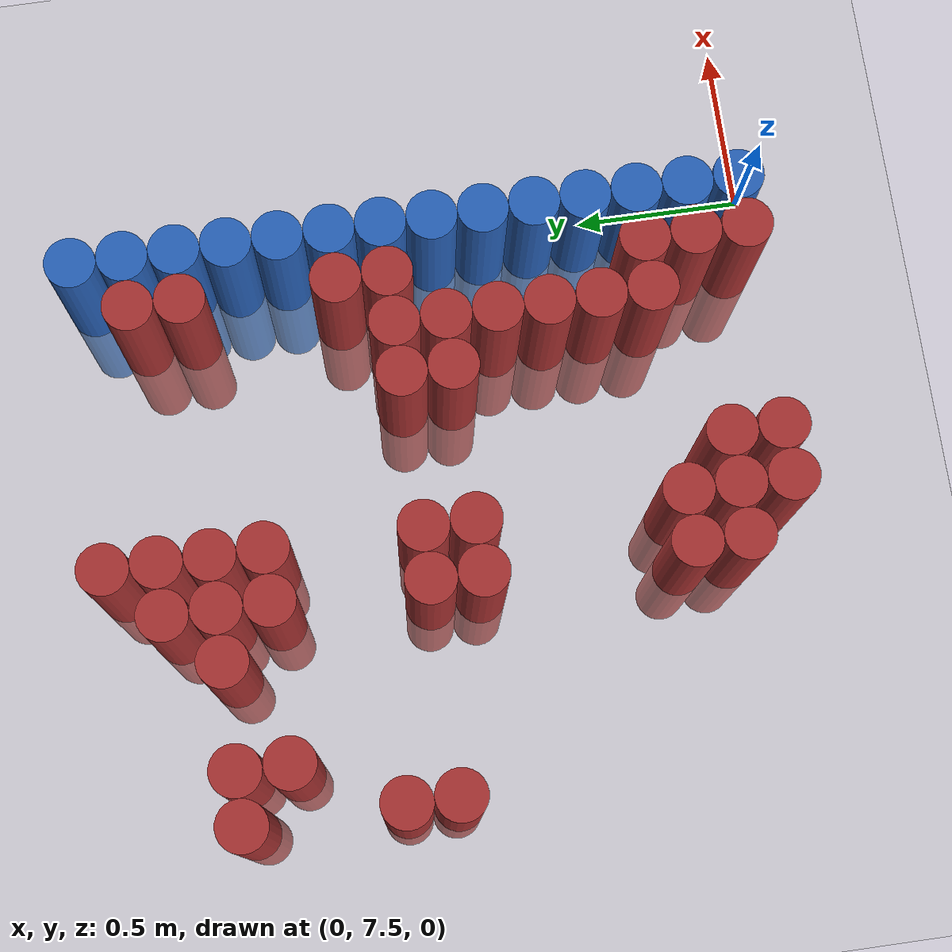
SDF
<sdf version="1.6">
 <world name="default">
  <model name="ground_plane">
   <static>1</static>
   <link name="link">
    <collision name="collision">
     <geometry><plane><normal>0 0 1</normal><size>100 100</size></plane></geometry>
     <surface><friction><ode><mu>100</mu><mu2>50</mu2></ode></friction></surface>
    </collision>
    <visual name="visual">
     <cast_shadows>0</cast_shadows>
     <geometry><plane><normal>0 0 1</normal><size>100 100</size></plane></geometry>
     <material>
      <script><uri>file://media/materials/scripts/gazebo.material</uri><name>Gazebo/Grey</name></script>
     </material>
    </visual>
   </link>
  </model>
  <model name="unit_cylinder_154">
   <static>1</static>
   <pose>-1.725000 8.625000 0.000000 0.000000 0.000000 0.000000</pose>
   <link name="link">
    <inertial>
     <mass>1</mass>
     <inertia><ixx>0.145833</ixx><ixy>0</ixy><ixz>0</ixz><iyy>0.145833</iyy><iyz>0</iyz><izz>0.125</izz></inertia>
    </inertial>
    <collision name="collision">
     <geometry><cylinder><radius>0.075000</radius><length>1</length></cylinder></geometry>
    </collision>
    <visual name="visual">
     <geometry><cylinder><radius>0.075000</radius><length>1</length></cylinder></geometry>
     <material>
      <ambient>0.648000 0.192000 0.192000 1</ambient>
      <diffuse>0.648000 0.192000 0.192000 1</diffuse>
     </material>
     <material>
      <script><name>Gazebo/Grey</name><uri>file://media/materials/scripts/gazebo.material</uri></script>
     </material>
    </visual>
   </link>
  </model>
  <model name="unit_cylinder_155">
   <static>1</static>
   <pose>-1.725000 8.775000 0.000000 0.000000 0.000000 0.000000</pose>
   <link name="link">
    <inertial>
     <mass>1</mass>
     <inertia><ixx>0.145833</ixx><ixy>0</ixy><ixz>0</ixz><iyy>0.145833</iyy><iyz>0</iyz><izz>0.125</izz></inertia>
    </inertial>
    <collision name="collision">
     <geometry><cylinder><radius>0.075000</radius><length>1</length></cylinder></geometry>
    </collision>
    <visual name="visual">
     <geometry><cylinder><radius>0.075000</radius><length>1</length></cylinder></geometry>
     <material>
      <ambient>0.648000 0.192000 0.192000 1</ambient>
      <diffuse>0.648000 0.192000 0.192000 1</diffuse>
     </material>
     <material>
      <script><name>Gazebo/Grey</name><uri>file://media/materials/scripts/gazebo.material</uri></script>
     </material>
    </visual>
   </link>
  </model>
  <model name="unit_cylinder_156">
   <static>1</static>
   <pose>-1.725000 9.225000 0.000000 0.000000 0.000000 0.000000</pose>
   <link name="link">
    <inertial>
     <mass>1</mass>
     <inertia><ixx>0.145833</ixx><ixy>0</ixy><ixz>0</ixz><iyy>0.145833</iyy><iyz>0</iyz><izz>0.125</izz></inertia>
    </inertial>
    <collision name="collision">
     <geometry><cylinder><radius>0.075000</radius><length>1</length></cylinder></geometry>
    </collision>
    <visual name="visual">
     <geometry><cylinder><radius>0.075000</radius><length>1</length></cylinder></geometry>
     <material>
      <ambient>0.648000 0.192000 0.192000 1</ambient>
      <diffuse>0.648000 0.192000 0.192000 1</diffuse>
     </material>
     <material>
      <script><name>Gazebo/Grey</name><uri>file://media/materials/scripts/gazebo.material</uri></script>
     </material>
    </visual>
   </link>
  </model>
  <model name="unit_cylinder_159">
   <static>1</static>
   <pose>-1.575000 9.075000 0.000000 0.000000 0.000000 0.000000</pose>
   <link name="link">
    <inertial>
     <mass>1</mass>
     <inertia><ixx>0.145833</ixx><ixy>0</ixy><ixz>0</ixz><iyy>0.145833</iyy><iyz>0</iyz><izz>0.125</izz></inertia>
    </inertial>
    <collision name="collision">
     <geometry><cylinder><radius>0.075000</radius><length>1</length></cylinder></geometry>
    </collision>
    <visual name="visual">
     <geometry><cylinder><radius>0.075000</radius><length>1</length></cylinder></geometry>
     <material>
      <ambient>0.648000 0.192000 0.192000 1</ambient>
      <diffuse>0.648000 0.192000 0.192000 1</diffuse>
     </material>
     <material>
      <script><name>Gazebo/Grey</name><uri>file://media/materials/scripts/gazebo.material</uri></script>
     </material>
    </visual>
   </link>
  </model>
  <model name="unit_cylinder_160">
   <static>1</static>
   <pose>-1.575000 9.225000 0.000000 0.000000 0.000000 0.000000</pose>
   <link name="link">
    <inertial>
     <mass>1</mass>
     <inertia><ixx>0.145833</ixx><ixy>0</ixy><ixz>0</ixz><iyy>0.145833</iyy><iyz>0</iyz><izz>0.125</izz></inertia>
    </inertial>
    <collision name="collision">
     <geometry><cylinder><radius>0.075000</radius><length>1</length></cylinder></geometry>
    </collision>
    <visual name="visual">
     <geometry><cylinder><radius>0.075000</radius><length>1</length></cylinder></geometry>
     <material>
      <ambient>0.648000 0.192000 0.192000 1</ambient>
      <diffuse>0.648000 0.192000 0.192000 1</diffuse>
     </material>
     <material>
      <script><name>Gazebo/Grey</name><uri>file://media/materials/scripts/gazebo.material</uri></script>
     </material>
    </visual>
   </link>
  </model>
  <model name="unit_cylinder_167">
   <static>1</static>
   <pose>-1.275000 9.225000 0.000000 0.000000 0.000000 0.000000</pose>
   <link name="link">
    <inertial>
     <mass>1</mass>
     <inertia><ixx>0.145833</ixx><ixy>0</ixy><ixz>0</ixz><iyy>0.145833</iyy><iyz>0</iyz><izz>0.125</izz></inertia>
    </inertial>
    <collision name="collision">
     <geometry><cylinder><radius>0.075000</radius><length>1</length></cylinder></geometry>
    </collision>
    <visual name="visual">
     <geometry><cylinder><radius>0.075000</radius><length>1</length></cylinder></geometry>
     <material>
      <ambient>0.648000 0.192000 0.192000 1</ambient>
      <diffuse>0.648000 0.192000 0.192000 1</diffuse>
     </material>
     <material>
      <script><name>Gazebo/Grey</name><uri>file://media/materials/scripts/gazebo.material</uri></script>
     </material>
    </visual>
   </link>
  </model>
  <model name="unit_cylinder_172">
   <static>1</static>
   <pose>-1.125000 7.725000 0.000000 0.000000 0.000000 0.000000</pose>
   <link name="link">
    <inertial>
     <mass>1</mass>
     <inertia><ixx>0.145833</ixx><ixy>0</ixy><ixz>0</ixz><iyy>0.145833</iyy><iyz>0</iyz><izz>0.125</izz></inertia>
    </inertial>
    <collision name="collision">
     <geometry><cylinder><radius>0.075000</radius><length>1</length></cylinder></geometry>
    </collision>
    <visual name="visual">
     <geometry><cylinder><radius>0.075000</radius><length>1</length></cylinder></geometry>
     <material>
      <ambient>0.648000 0.192000 0.192000 1</ambient>
      <diffuse>0.648000 0.192000 0.192000 1</diffuse>
     </material>
     <material>
      <script><name>Gazebo/Grey</name><uri>file://media/materials/scripts/gazebo.material</uri></script>
     </material>
    </visual>
   </link>
  </model>
  <model name="unit_cylinder_173">
   <static>1</static>
   <pose>-1.125000 7.875000 0.000000 0.000000 0.000000 0.000000</pose>
   <link name="link">
    <inertial>
     <mass>1</mass>
     <inertia><ixx>0.145833</ixx><ixy>0</ixy><ixz>0</ixz><iyy>0.145833</iyy><iyz>0</iyz><izz>0.125</izz></inertia>
    </inertial>
    <collision name="collision">
     <geometry><cylinder><radius>0.075000</radius><length>1</length></cylinder></geometry>
    </collision>
    <visual name="visual">
     <geometry><cylinder><radius>0.075000</radius><length>1</length></cylinder></geometry>
     <material>
      <ambient>0.648000 0.192000 0.192000 1</ambient>
      <diffuse>0.648000 0.192000 0.192000 1</diffuse>
     </material>
     <material>
      <script><name>Gazebo/Grey</name><uri>file://media/materials/scripts/gazebo.material</uri></script>
     </material>
    </visual>
   </link>
  </model>
  <model name="unit_cylinder_174">
   <static>1</static>
   <pose>-1.125000 8.475000 0.000000 0.000000 0.000000 0.000000</pose>
   <link name="link">
    <inertial>
     <mass>1</mass>
     <inertia><ixx>0.145833</ixx><ixy>0</ixy><ixz>0</ixz><iyy>0.145833</iyy><iyz>0</iyz><izz>0.125</izz></inertia>
    </inertial>
    <collision name="collision">
     <geometry><cylinder><radius>0.075000</radius><length>1</length></cylinder></geometry>
    </collision>
    <visual name="visual">
     <geometry><cylinder><radius>0.075000</radius><length>1</length></cylinder></geometry>
     <material>
      <ambient>0.648000 0.192000 0.192000 1</ambient>
      <diffuse>0.648000 0.192000 0.192000 1</diffuse>
     </material>
     <material>
      <script><name>Gazebo/Grey</name><uri>file://media/materials/scripts/gazebo.material</uri></script>
     </material>
    </visual>
   </link>
  </model>
  <model name="unit_cylinder_175">
   <static>1</static>
   <pose>-1.125000 8.625000 0.000000 0.000000 0.000000 0.000000</pose>
   <link name="link">
    <inertial>
     <mass>1</mass>
     <inertia><ixx>0.145833</ixx><ixy>0</ixy><ixz>0</ixz><iyy>0.145833</iyy><iyz>0</iyz><izz>0.125</izz></inertia>
    </inertial>
    <collision name="collision">
     <geometry><cylinder><radius>0.075000</radius><length>1</length></cylinder></geometry>
    </collision>
    <visual name="visual">
     <geometry><cylinder><radius>0.075000</radius><length>1</length></cylinder></geometry>
     <material>
      <ambient>0.648000 0.192000 0.192000 1</ambient>
      <diffuse>0.648000 0.192000 0.192000 1</diffuse>
     </material>
     <material>
      <script><name>Gazebo/Grey</name><uri>file://media/materials/scripts/gazebo.material</uri></script>
     </material>
    </visual>
   </link>
  </model>
  <model name="unit_cylinder_176">
   <static>1</static>
   <pose>-1.125000 9.075000 0.000000 0.000000 0.000000 0.000000</pose>
   <link name="link">
    <inertial>
     <mass>1</mass>
     <inertia><ixx>0.145833</ixx><ixy>0</ixy><ixz>0</ixz><iyy>0.145833</iyy><iyz>0</iyz><izz>0.125</izz></inertia>
    </inertial>
    <collision name="collision">
     <geometry><cylinder><radius>0.075000</radius><length>1</length></cylinder></geometry>
    </collision>
    <visual name="visual">
     <geometry><cylinder><radius>0.075000</radius><length>1</length></cylinder></geometry>
     <material>
      <ambient>0.648000 0.192000 0.192000 1</ambient>
      <diffuse>0.648000 0.192000 0.192000 1</diffuse>
     </material>
     <material>
      <script><name>Gazebo/Grey</name><uri>file://media/materials/scripts/gazebo.material</uri></script>
     </material>
    </visual>
   </link>
  </model>
  <model name="unit_cylinder_177">
   <static>1</static>
   <pose>-1.125000 9.225000 0.000000 0.000000 0.000000 0.000000</pose>
   <link name="link">
    <inertial>
     <mass>1</mass>
     <inertia><ixx>0.145833</ixx><ixy>0</ixy><ixz>0</ixz><iyy>0.145833</iyy><iyz>0</iyz><izz>0.125</izz></inertia>
    </inertial>
    <collision name="collision">
     <geometry><cylinder><radius>0.075000</radius><length>1</length></cylinder></geometry>
    </collision>
    <visual name="visual">
     <geometry><cylinder><radius>0.075000</radius><length>1</length></cylinder></geometry>
     <material>
      <ambient>0.648000 0.192000 0.192000 1</ambient>
      <diffuse>0.648000 0.192000 0.192000 1</diffuse>
     </material>
     <material>
      <script><name>Gazebo/Grey</name><uri>file://media/materials/scripts/gazebo.material</uri></script>
     </material>
    </visual>
   </link>
  </model>
  <model name="unit_cylinder_178">
   <static>1</static>
   <pose>-1.125000 9.375000 0.000000 0.000000 0.000000 0.000000</pose>
   <link name="link">
    <inertial>
     <mass>1</mass>
     <inertia><ixx>0.145833</ixx><ixy>0</ixy><ixz>0</ixz><iyy>0.145833</iyy><iyz>0</iyz><izz>0.125</izz></inertia>
    </inertial>
    <collision name="collision">
     <geometry><cylinder><radius>0.075000</radius><length>1</length></cylinder></geometry>
    </collision>
    <visual name="visual">
     <geometry><cylinder><radius>0.075000</radius><length>1</length></cylinder></geometry>
     <material>
      <ambient>0.648000 0.192000 0.192000 1</ambient>
      <diffuse>0.648000 0.192000 0.192000 1</diffuse>
     </material>
     <material>
      <script><name>Gazebo/Grey</name><uri>file://media/materials/scripts/gazebo.material</uri></script>
     </material>
    </visual>
   </link>
  </model>
  <model name="unit_cylinder_182">
   <static>1</static>
   <pose>-0.975000 7.575000 0.000000 0.000000 0.000000 0.000000</pose>
   <link name="link">
    <inertial>
     <mass>1</mass>
     <inertia><ixx>0.145833</ixx><ixy>0</ixy><ixz>0</ixz><iyy>0.145833</iyy><iyz>0</iyz><izz>0.125</izz></inertia>
    </inertial>
    <collision name="collision">
     <geometry><cylinder><radius>0.075000</radius><length>1</length></cylinder></geometry>
    </collision>
    <visual name="visual">
     <geometry><cylinder><radius>0.075000</radius><length>1</length></cylinder></geometry>
     <material>
      <ambient>0.648000 0.192000 0.192000 1</ambient>
      <diffuse>0.648000 0.192000 0.192000 1</diffuse>
     </material>
     <material>
      <script><name>Gazebo/Grey</name><uri>file://media/materials/scripts/gazebo.material</uri></script>
     </material>
    </visual>
   </link>
  </model>
  <model name="unit_cylinder_183">
   <static>1</static>
   <pose>-0.975000 7.725000 0.000000 0.000000 0.000000 0.000000</pose>
   <link name="link">
    <inertial>
     <mass>1</mass>
     <inertia><ixx>0.145833</ixx><ixy>0</ixy><ixz>0</ixz><iyy>0.145833</iyy><iyz>0</iyz><izz>0.125</izz></inertia>
    </inertial>
    <collision name="collision">
     <geometry><cylinder><radius>0.075000</radius><length>1</length></cylinder></geometry>
    </collision>
    <visual name="visual">
     <geometry><cylinder><radius>0.075000</radius><length>1</length></cylinder></geometry>
     <material>
      <ambient>0.648000 0.192000 0.192000 1</ambient>
      <diffuse>0.648000 0.192000 0.192000 1</diffuse>
     </material>
     <material>
      <script><name>Gazebo/Grey</name><uri>file://media/materials/scripts/gazebo.material</uri></script>
     </material>
    </visual>
   </link>
  </model>
  <model name="unit_cylinder_184">
   <static>1</static>
   <pose>-0.975000 7.875000 0.000000 0.000000 0.000000 0.000000</pose>
   <link name="link">
    <inertial>
     <mass>1</mass>
     <inertia><ixx>0.145833</ixx><ixy>0</ixy><ixz>0</ixz><iyy>0.145833</iyy><iyz>0</iyz><izz>0.125</izz></inertia>
    </inertial>
    <collision name="collision">
     <geometry><cylinder><radius>0.075000</radius><length>1</length></cylinder></geometry>
    </collision>
    <visual name="visual">
     <geometry><cylinder><radius>0.075000</radius><length>1</length></cylinder></geometry>
     <material>
      <ambient>0.648000 0.192000 0.192000 1</ambient>
      <diffuse>0.648000 0.192000 0.192000 1</diffuse>
     </material>
     <material>
      <script><name>Gazebo/Grey</name><uri>file://media/materials/scripts/gazebo.material</uri></script>
     </material>
    </visual>
   </link>
  </model>
  <model name="unit_cylinder_185">
   <static>1</static>
   <pose>-0.975000 8.475000 0.000000 0.000000 0.000000 0.000000</pose>
   <link name="link">
    <inertial>
     <mass>1</mass>
     <inertia><ixx>0.145833</ixx><ixy>0</ixy><ixz>0</ixz><iyy>0.145833</iyy><iyz>0</iyz><izz>0.125</izz></inertia>
    </inertial>
    <collision name="collision">
     <geometry><cylinder><radius>0.075000</radius><length>1</length></cylinder></geometry>
    </collision>
    <visual name="visual">
     <geometry><cylinder><radius>0.075000</radius><length>1</length></cylinder></geometry>
     <material>
      <ambient>0.648000 0.192000 0.192000 1</ambient>
      <diffuse>0.648000 0.192000 0.192000 1</diffuse>
     </material>
     <material>
      <script><name>Gazebo/Grey</name><uri>file://media/materials/scripts/gazebo.material</uri></script>
     </material>
    </visual>
   </link>
  </model>
  <model name="unit_cylinder_186">
   <static>1</static>
   <pose>-0.975000 8.625000 0.000000 0.000000 0.000000 0.000000</pose>
   <link name="link">
    <inertial>
     <mass>1</mass>
     <inertia><ixx>0.145833</ixx><ixy>0</ixy><ixz>0</ixz><iyy>0.145833</iyy><iyz>0</iyz><izz>0.125</izz></inertia>
    </inertial>
    <collision name="collision">
     <geometry><cylinder><radius>0.075000</radius><length>1</length></cylinder></geometry>
    </collision>
    <visual name="visual">
     <geometry><cylinder><radius>0.075000</radius><length>1</length></cylinder></geometry>
     <material>
      <ambient>0.648000 0.192000 0.192000 1</ambient>
      <diffuse>0.648000 0.192000 0.192000 1</diffuse>
     </material>
     <material>
      <script><name>Gazebo/Grey</name><uri>file://media/materials/scripts/gazebo.material</uri></script>
     </material>
    </visual>
   </link>
  </model>
  <model name="unit_cylinder_187">
   <static>1</static>
   <pose>-0.975000 9.075000 0.000000 0.000000 0.000000 0.000000</pose>
   <link name="link">
    <inertial>
     <mass>1</mass>
     <inertia><ixx>0.145833</ixx><ixy>0</ixy><ixz>0</ixz><iyy>0.145833</iyy><iyz>0</iyz><izz>0.125</izz></inertia>
    </inertial>
    <collision name="collision">
     <geometry><cylinder><radius>0.075000</radius><length>1</length></cylinder></geometry>
    </collision>
    <visual name="visual">
     <geometry><cylinder><radius>0.075000</radius><length>1</length></cylinder></geometry>
     <material>
      <ambient>0.648000 0.192000 0.192000 1</ambient>
      <diffuse>0.648000 0.192000 0.192000 1</diffuse>
     </material>
     <material>
      <script><name>Gazebo/Grey</name><uri>file://media/materials/scripts/gazebo.material</uri></script>
     </material>
    </visual>
   </link>
  </model>
  <model name="unit_cylinder_188">
   <static>1</static>
   <pose>-0.975000 9.225000 0.000000 0.000000 0.000000 0.000000</pose>
   <link name="link">
    <inertial>
     <mass>1</mass>
     <inertia><ixx>0.145833</ixx><ixy>0</ixy><ixz>0</ixz><iyy>0.145833</iyy><iyz>0</iyz><izz>0.125</izz></inertia>
    </inertial>
    <collision name="collision">
     <geometry><cylinder><radius>0.075000</radius><length>1</length></cylinder></geometry>
    </collision>
    <visual name="visual">
     <geometry><cylinder><radius>0.075000</radius><length>1</length></cylinder></geometry>
     <material>
      <ambient>0.648000 0.192000 0.192000 1</ambient>
      <diffuse>0.648000 0.192000 0.192000 1</diffuse>
     </material>
     <material>
      <script><name>Gazebo/Grey</name><uri>file://media/materials/scripts/gazebo.material</uri></script>
     </material>
    </visual>
   </link>
  </model>
  <model name="unit_cylinder_189">
   <static>1</static>
   <pose>-0.975000 9.375000 0.000000 0.000000 0.000000 0.000000</pose>
   <link name="link">
    <inertial>
     <mass>1</mass>
     <inertia><ixx>0.145833</ixx><ixy>0</ixy><ixz>0</ixz><iyy>0.145833</iyy><iyz>0</iyz><izz>0.125</izz></inertia>
    </inertial>
    <collision name="collision">
     <geometry><cylinder><radius>0.075000</radius><length>1</length></cylinder></geometry>
    </collision>
    <visual name="visual">
     <geometry><cylinder><radius>0.075000</radius><length>1</length></cylinder></geometry>
     <material>
      <ambient>0.648000 0.192000 0.192000 1</ambient>
      <diffuse>0.648000 0.192000 0.192000 1</diffuse>
     </material>
     <material>
      <script><name>Gazebo/Grey</name><uri>file://media/materials/scripts/gazebo.material</uri></script>
     </material>
    </visual>
   </link>
  </model>
  <model name="unit_cylinder_190">
   <static>1</static>
   <pose>-0.975000 9.525000 0.000000 0.000000 0.000000 0.000000</pose>
   <link name="link">
    <inertial>
     <mass>1</mass>
     <inertia><ixx>0.145833</ixx><ixy>0</ixy><ixz>0</ixz><iyy>0.145833</iyy><iyz>0</iyz><izz>0.125</izz></inertia>
    </inertial>
    <collision name="collision">
     <geometry><cylinder><radius>0.075000</radius><length>1</length></cylinder></geometry>
    </collision>
    <visual name="visual">
     <geometry><cylinder><radius>0.075000</radius><length>1</length></cylinder></geometry>
     <material>
      <ambient>0.648000 0.192000 0.192000 1</ambient>
      <diffuse>0.648000 0.192000 0.192000 1</diffuse>
     </material>
     <material>
      <script><name>Gazebo/Grey</name><uri>file://media/materials/scripts/gazebo.material</uri></script>
     </material>
    </visual>
   </link>
  </model>
  <model name="unit_cylinder_195">
   <static>1</static>
   <pose>-0.825000 7.575000 0.000000 0.000000 0.000000 0.000000</pose>
   <link name="link">
    <inertial>
     <mass>1</mass>
     <inertia><ixx>0.145833</ixx><ixy>0</ixy><ixz>0</ixz><iyy>0.145833</iyy><iyz>0</iyz><izz>0.125</izz></inertia>
    </inertial>
    <collision name="collision">
     <geometry><cylinder><radius>0.075000</radius><length>1</length></cylinder></geometry>
    </collision>
    <visual name="visual">
     <geometry><cylinder><radius>0.075000</radius><length>1</length></cylinder></geometry>
     <material>
      <ambient>0.648000 0.192000 0.192000 1</ambient>
      <diffuse>0.648000 0.192000 0.192000 1</diffuse>
     </material>
     <material>
      <script><name>Gazebo/Grey</name><uri>file://media/materials/scripts/gazebo.material</uri></script>
     </material>
    </visual>
   </link>
  </model>
  <model name="unit_cylinder_196">
   <static>1</static>
   <pose>-0.825000 7.725000 0.000000 0.000000 0.000000 0.000000</pose>
   <link name="link">
    <inertial>
     <mass>1</mass>
     <inertia><ixx>0.145833</ixx><ixy>0</ixy><ixz>0</ixz><iyy>0.145833</iyy><iyz>0</iyz><izz>0.125</izz></inertia>
    </inertial>
    <collision name="collision">
     <geometry><cylinder><radius>0.075000</radius><length>1</length></cylinder></geometry>
    </collision>
    <visual name="visual">
     <geometry><cylinder><radius>0.075000</radius><length>1</length></cylinder></geometry>
     <material>
      <ambient>0.648000 0.192000 0.192000 1</ambient>
      <diffuse>0.648000 0.192000 0.192000 1</diffuse>
     </material>
     <material>
      <script><name>Gazebo/Grey</name><uri>file://media/materials/scripts/gazebo.material</uri></script>
     </material>
    </visual>
   </link>
  </model>
  <model name="unit_cylinder_207">
   <static>1</static>
   <pose>-0.525000 8.475000 0.000000 0.000000 0.000000 0.000000</pose>
   <link name="link">
    <inertial>
     <mass>1</mass>
     <inertia><ixx>0.145833</ixx><ixy>0</ixy><ixz>0</ixz><iyy>0.145833</iyy><iyz>0</iyz><izz>0.125</izz></inertia>
    </inertial>
    <collision name="collision">
     <geometry><cylinder><radius>0.075000</radius><length>1</length></cylinder></geometry>
    </collision>
    <visual name="visual">
     <geometry><cylinder><radius>0.075000</radius><length>1</length></cylinder></geometry>
     <material>
      <ambient>0.648000 0.192000 0.192000 1</ambient>
      <diffuse>0.648000 0.192000 0.192000 1</diffuse>
     </material>
     <material>
      <script><name>Gazebo/Grey</name><uri>file://media/materials/scripts/gazebo.material</uri></script>
     </material>
    </visual>
   </link>
  </model>
  <model name="unit_cylinder_208">
   <static>1</static>
   <pose>-0.525000 8.625000 0.000000 0.000000 0.000000 0.000000</pose>
   <link name="link">
    <inertial>
     <mass>1</mass>
     <inertia><ixx>0.145833</ixx><ixy>0</ixy><ixz>0</ixz><iyy>0.145833</iyy><iyz>0</iyz><izz>0.125</izz></inertia>
    </inertial>
    <collision name="collision">
     <geometry><cylinder><radius>0.075000</radius><length>1</length></cylinder></geometry>
    </collision>
    <visual name="visual">
     <geometry><cylinder><radius>0.075000</radius><length>1</length></cylinder></geometry>
     <material>
      <ambient>0.648000 0.192000 0.192000 1</ambient>
      <diffuse>0.648000 0.192000 0.192000 1</diffuse>
     </material>
     <material>
      <script><name>Gazebo/Grey</name><uri>file://media/materials/scripts/gazebo.material</uri></script>
     </material>
    </visual>
   </link>
  </model>
  <model name="unit_cylinder_214">
   <static>1</static>
   <pose>-0.375000 7.875000 0.000000 0.000000 0.000000 0.000000</pose>
   <link name="link">
    <inertial>
     <mass>1</mass>
     <inertia><ixx>0.145833</ixx><ixy>0</ixy><ixz>0</ixz><iyy>0.145833</iyy><iyz>0</iyz><izz>0.125</izz></inertia>
    </inertial>
    <collision name="collision">
     <geometry><cylinder><radius>0.075000</radius><length>1</length></cylinder></geometry>
    </collision>
    <visual name="visual">
     <geometry><cylinder><radius>0.075000</radius><length>1</length></cylinder></geometry>
     <material>
      <ambient>0.648000 0.192000 0.192000 1</ambient>
      <diffuse>0.648000 0.192000 0.192000 1</diffuse>
     </material>
     <material>
      <script><name>Gazebo/Grey</name><uri>file://media/materials/scripts/gazebo.material</uri></script>
     </material>
    </visual>
   </link>
  </model>
  <model name="unit_cylinder_215">
   <static>1</static>
   <pose>-0.375000 8.025000 0.000000 0.000000 0.000000 0.000000</pose>
   <link name="link">
    <inertial>
     <mass>1</mass>
     <inertia><ixx>0.145833</ixx><ixy>0</ixy><ixz>0</ixz><iyy>0.145833</iyy><iyz>0</iyz><izz>0.125</izz></inertia>
    </inertial>
    <collision name="collision">
     <geometry><cylinder><radius>0.075000</radius><length>1</length></cylinder></geometry>
    </collision>
    <visual name="visual">
     <geometry><cylinder><radius>0.075000</radius><length>1</length></cylinder></geometry>
     <material>
      <ambient>0.648000 0.192000 0.192000 1</ambient>
      <diffuse>0.648000 0.192000 0.192000 1</diffuse>
     </material>
     <material>
      <script><name>Gazebo/Grey</name><uri>file://media/materials/scripts/gazebo.material</uri></script>
     </material>
    </visual>
   </link>
  </model>
  <model name="unit_cylinder_216">
   <static>1</static>
   <pose>-0.375000 8.175000 0.000000 0.000000 0.000000 0.000000</pose>
   <link name="link">
    <inertial>
     <mass>1</mass>
     <inertia><ixx>0.145833</ixx><ixy>0</ixy><ixz>0</ixz><iyy>0.145833</iyy><iyz>0</iyz><izz>0.125</izz></inertia>
    </inertial>
    <collision name="collision">
     <geometry><cylinder><radius>0.075000</radius><length>1</length></cylinder></geometry>
    </collision>
    <visual name="visual">
     <geometry><cylinder><radius>0.075000</radius><length>1</length></cylinder></geometry>
     <material>
      <ambient>0.648000 0.192000 0.192000 1</ambient>
      <diffuse>0.648000 0.192000 0.192000 1</diffuse>
     </material>
     <material>
      <script><name>Gazebo/Grey</name><uri>file://media/materials/scripts/gazebo.material</uri></script>
     </material>
    </visual>
   </link>
  </model>
  <model name="unit_cylinder_217">
   <static>1</static>
   <pose>-0.375000 8.325000 0.000000 0.000000 0.000000 0.000000</pose>
   <link name="link">
    <inertial>
     <mass>1</mass>
     <inertia><ixx>0.145833</ixx><ixy>0</ixy><ixz>0</ixz><iyy>0.145833</iyy><iyz>0</iyz><izz>0.125</izz></inertia>
    </inertial>
    <collision name="collision">
     <geometry><cylinder><radius>0.075000</radius><length>1</length></cylinder></geometry>
    </collision>
    <visual name="visual">
     <geometry><cylinder><radius>0.075000</radius><length>1</length></cylinder></geometry>
     <material>
      <ambient>0.648000 0.192000 0.192000 1</ambient>
      <diffuse>0.648000 0.192000 0.192000 1</diffuse>
     </material>
     <material>
      <script><name>Gazebo/Grey</name><uri>file://media/materials/scripts/gazebo.material</uri></script>
     </material>
    </visual>
   </link>
  </model>
  <model name="unit_cylinder_218">
   <static>1</static>
   <pose>-0.375000 8.475000 0.000000 0.000000 0.000000 0.000000</pose>
   <link name="link">
    <inertial>
     <mass>1</mass>
     <inertia><ixx>0.145833</ixx><ixy>0</ixy><ixz>0</ixz><iyy>0.145833</iyy><iyz>0</iyz><izz>0.125</izz></inertia>
    </inertial>
    <collision name="collision">
     <geometry><cylinder><radius>0.075000</radius><length>1</length></cylinder></geometry>
    </collision>
    <visual name="visual">
     <geometry><cylinder><radius>0.075000</radius><length>1</length></cylinder></geometry>
     <material>
      <ambient>0.648000 0.192000 0.192000 1</ambient>
      <diffuse>0.648000 0.192000 0.192000 1</diffuse>
     </material>
     <material>
      <script><name>Gazebo/Grey</name><uri>file://media/materials/scripts/gazebo.material</uri></script>
     </material>
    </visual>
   </link>
  </model>
  <model name="unit_cylinder_219">
   <static>1</static>
   <pose>-0.375000 8.625000 0.000000 0.000000 0.000000 0.000000</pose>
   <link name="link">
    <inertial>
     <mass>1</mass>
     <inertia><ixx>0.145833</ixx><ixy>0</ixy><ixz>0</ixz><iyy>0.145833</iyy><iyz>0</iyz><izz>0.125</izz></inertia>
    </inertial>
    <collision name="collision">
     <geometry><cylinder><radius>0.075000</radius><length>1</length></cylinder></geometry>
    </collision>
    <visual name="visual">
     <geometry><cylinder><radius>0.075000</radius><length>1</length></cylinder></geometry>
     <material>
      <ambient>0.648000 0.192000 0.192000 1</ambient>
      <diffuse>0.648000 0.192000 0.192000 1</diffuse>
     </material>
     <material>
      <script><name>Gazebo/Grey</name><uri>file://media/materials/scripts/gazebo.material</uri></script>
     </material>
    </visual>
   </link>
  </model>
  <model name="unit_cylinder_227">
   <static>1</static>
   <pose>-0.225000 7.575000 0.000000 0.000000 0.000000 0.000000</pose>
   <link name="link">
    <inertial>
     <mass>1</mass>
     <inertia><ixx>0.145833</ixx><ixy>0</ixy><ixz>0</ixz><iyy>0.145833</iyy><iyz>0</iyz><izz>0.125</izz></inertia>
    </inertial>
    <collision name="collision">
     <geometry><cylinder><radius>0.075000</radius><length>1</length></cylinder></geometry>
    </collision>
    <visual name="visual">
     <geometry><cylinder><radius>0.075000</radius><length>1</length></cylinder></geometry>
     <material>
      <ambient>0.648000 0.192000 0.192000 1</ambient>
      <diffuse>0.648000 0.192000 0.192000 1</diffuse>
     </material>
     <material>
      <script><name>Gazebo/Grey</name><uri>file://media/materials/scripts/gazebo.material</uri></script>
     </material>
    </visual>
   </link>
  </model>
  <model name="unit_cylinder_228">
   <static>1</static>
   <pose>-0.225000 7.725000 0.000000 0.000000 0.000000 0.000000</pose>
   <link name="link">
    <inertial>
     <mass>1</mass>
     <inertia><ixx>0.145833</ixx><ixy>0</ixy><ixz>0</ixz><iyy>0.145833</iyy><iyz>0</iyz><izz>0.125</izz></inertia>
    </inertial>
    <collision name="collision">
     <geometry><cylinder><radius>0.075000</radius><length>1</length></cylinder></geometry>
    </collision>
    <visual name="visual">
     <geometry><cylinder><radius>0.075000</radius><length>1</length></cylinder></geometry>
     <material>
      <ambient>0.648000 0.192000 0.192000 1</ambient>
      <diffuse>0.648000 0.192000 0.192000 1</diffuse>
     </material>
     <material>
      <script><name>Gazebo/Grey</name><uri>file://media/materials/scripts/gazebo.material</uri></script>
     </material>
    </visual>
   </link>
  </model>
  <model name="unit_cylinder_229">
   <static>1</static>
   <pose>-0.225000 7.875000 0.000000 0.000000 0.000000 0.000000</pose>
   <link name="link">
    <inertial>
     <mass>1</mass>
     <inertia><ixx>0.145833</ixx><ixy>0</ixy><ixz>0</ixz><iyy>0.145833</iyy><iyz>0</iyz><izz>0.125</izz></inertia>
    </inertial>
    <collision name="collision">
     <geometry><cylinder><radius>0.075000</radius><length>1</length></cylinder></geometry>
    </collision>
    <visual name="visual">
     <geometry><cylinder><radius>0.075000</radius><length>1</length></cylinder></geometry>
     <material>
      <ambient>0.648000 0.192000 0.192000 1</ambient>
      <diffuse>0.648000 0.192000 0.192000 1</diffuse>
     </material>
     <material>
      <script><name>Gazebo/Grey</name><uri>file://media/materials/scripts/gazebo.material</uri></script>
     </material>
    </visual>
   </link>
  </model>
  <model name="unit_cylinder_230">
   <static>1</static>
   <pose>-0.225000 8.625000 0.000000 0.000000 0.000000 0.000000</pose>
   <link name="link">
    <inertial>
     <mass>1</mass>
     <inertia><ixx>0.145833</ixx><ixy>0</ixy><ixz>0</ixz><iyy>0.145833</iyy><iyz>0</iyz><izz>0.125</izz></inertia>
    </inertial>
    <collision name="collision">
     <geometry><cylinder><radius>0.075000</radius><length>1</length></cylinder></geometry>
    </collision>
    <visual name="visual">
     <geometry><cylinder><radius>0.075000</radius><length>1</length></cylinder></geometry>
     <material>
      <ambient>0.648000 0.192000 0.192000 1</ambient>
      <diffuse>0.648000 0.192000 0.192000 1</diffuse>
     </material>
     <material>
      <script><name>Gazebo/Grey</name><uri>file://media/materials/scripts/gazebo.material</uri></script>
     </material>
    </visual>
   </link>
  </model>
  <model name="unit_cylinder_231">
   <static>1</static>
   <pose>-0.225000 8.775000 0.000000 0.000000 0.000000 0.000000</pose>
   <link name="link">
    <inertial>
     <mass>1</mass>
     <inertia><ixx>0.145833</ixx><ixy>0</ixy><ixz>0</ixz><iyy>0.145833</iyy><iyz>0</iyz><izz>0.125</izz></inertia>
    </inertial>
    <collision name="collision">
     <geometry><cylinder><radius>0.075000</radius><length>1</length></cylinder></geometry>
    </collision>
    <visual name="visual">
     <geometry><cylinder><radius>0.075000</radius><length>1</length></cylinder></geometry>
     <material>
      <ambient>0.648000 0.192000 0.192000 1</ambient>
      <diffuse>0.648000 0.192000 0.192000 1</diffuse>
     </material>
     <material>
      <script><name>Gazebo/Grey</name><uri>file://media/materials/scripts/gazebo.material</uri></script>
     </material>
    </visual>
   </link>
  </model>
  <model name="unit_cylinder_232">
   <static>1</static>
   <pose>-0.225000 9.225000 0.000000 0.000000 0.000000 0.000000</pose>
   <link name="link">
    <inertial>
     <mass>1</mass>
     <inertia><ixx>0.145833</ixx><ixy>0</ixy><ixz>0</ixz><iyy>0.145833</iyy><iyz>0</iyz><izz>0.125</izz></inertia>
    </inertial>
    <collision name="collision">
     <geometry><cylinder><radius>0.075000</radius><length>1</length></cylinder></geometry>
    </collision>
    <visual name="visual">
     <geometry><cylinder><radius>0.075000</radius><length>1</length></cylinder></geometry>
     <material>
      <ambient>0.648000 0.192000 0.192000 1</ambient>
      <diffuse>0.648000 0.192000 0.192000 1</diffuse>
     </material>
     <material>
      <script><name>Gazebo/Grey</name><uri>file://media/materials/scripts/gazebo.material</uri></script>
     </material>
    </visual>
   </link>
  </model>
  <model name="unit_cylinder_233">
   <static>1</static>
   <pose>-0.225000 9.375000 0.000000 0.000000 0.000000 0.000000</pose>
   <link name="link">
    <inertial>
     <mass>1</mass>
     <inertia><ixx>0.145833</ixx><ixy>0</ixy><ixz>0</ixz><iyy>0.145833</iyy><iyz>0</iyz><izz>0.125</izz></inertia>
    </inertial>
    <collision name="collision">
     <geometry><cylinder><radius>0.075000</radius><length>1</length></cylinder></geometry>
    </collision>
    <visual name="visual">
     <geometry><cylinder><radius>0.075000</radius><length>1</length></cylinder></geometry>
     <material>
      <ambient>0.648000 0.192000 0.192000 1</ambient>
      <diffuse>0.648000 0.192000 0.192000 1</diffuse>
     </material>
     <material>
      <script><name>Gazebo/Grey</name><uri>file://media/materials/scripts/gazebo.material</uri></script>
     </material>
    </visual>
   </link>
  </model>
  <model name="unit_cylinder_250">
   <static>1</static>
   <pose>-0.075000 7.575000 0.000000 0.000000 0.000000 0.000000</pose>
   <link name="link">
    <inertial>
     <mass>1</mass>
     <inertia><ixx>0.145833</ixx><ixy>0</ixy><ixz>0</ixz><iyy>0.145833</iyy><iyz>0</iyz><izz>0.125</izz></inertia>
    </inertial>
    <collision name="collision">
     <geometry><cylinder><radius>0.075000</radius><length>1</length></cylinder></geometry>
    </collision>
    <visual name="visual">
     <geometry><cylinder><radius>0.075000</radius><length>1</length></cylinder></geometry>
     <material>
      <ambient>0.152000 0.379000 0.720000 1</ambient>
      <diffuse>0.152000 0.379000 0.720000 1</diffuse>
     </material>
     <material>
      <script><name>Gazebo/Grey</name><uri>file://media/materials/scripts/gazebo.material</uri></script>
     </material>
    </visual>
   </link>
  </model>
  <model name="unit_cylinder_251">
   <static>1</static>
   <pose>-0.075000 7.725000 0.000000 0.000000 0.000000 0.000000</pose>
   <link name="link">
    <inertial>
     <mass>1</mass>
     <inertia><ixx>0.145833</ixx><ixy>0</ixy><ixz>0</ixz><iyy>0.145833</iyy><iyz>0</iyz><izz>0.125</izz></inertia>
    </inertial>
    <collision name="collision">
     <geometry><cylinder><radius>0.075000</radius><length>1</length></cylinder></geometry>
    </collision>
    <visual name="visual">
     <geometry><cylinder><radius>0.075000</radius><length>1</length></cylinder></geometry>
     <material>
      <ambient>0.152000 0.379000 0.720000 1</ambient>
      <diffuse>0.152000 0.379000 0.720000 1</diffuse>
     </material>
     <material>
      <script><name>Gazebo/Grey</name><uri>file://media/materials/scripts/gazebo.material</uri></script>
     </material>
    </visual>
   </link>
  </model>
  <model name="unit_cylinder_252">
   <static>1</static>
   <pose>-0.075000 7.875000 0.000000 0.000000 0.000000 0.000000</pose>
   <link name="link">
    <inertial>
     <mass>1</mass>
     <inertia><ixx>0.145833</ixx><ixy>0</ixy><ixz>0</ixz><iyy>0.145833</iyy><iyz>0</iyz><izz>0.125</izz></inertia>
    </inertial>
    <collision name="collision">
     <geometry><cylinder><radius>0.075000</radius><length>1</length></cylinder></geometry>
    </collision>
    <visual name="visual">
     <geometry><cylinder><radius>0.075000</radius><length>1</length></cylinder></geometry>
     <material>
      <ambient>0.152000 0.379000 0.720000 1</ambient>
      <diffuse>0.152000 0.379000 0.720000 1</diffuse>
     </material>
     <material>
      <script><name>Gazebo/Grey</name><uri>file://media/materials/scripts/gazebo.material</uri></script>
     </material>
    </visual>
   </link>
  </model>
  <model name="unit_cylinder_253">
   <static>1</static>
   <pose>-0.075000 8.025000 0.000000 0.000000 0.000000 0.000000</pose>
   <link name="link">
    <inertial>
     <mass>1</mass>
     <inertia><ixx>0.145833</ixx><ixy>0</ixy><ixz>0</ixz><iyy>0.145833</iyy><iyz>0</iyz><izz>0.125</izz></inertia>
    </inertial>
    <collision name="collision">
     <geometry><cylinder><radius>0.075000</radius><length>1</length></cylinder></geometry>
    </collision>
    <visual name="visual">
     <geometry><cylinder><radius>0.075000</radius><length>1</length></cylinder></geometry>
     <material>
      <ambient>0.152000 0.379000 0.720000 1</ambient>
      <diffuse>0.152000 0.379000 0.720000 1</diffuse>
     </material>
     <material>
      <script><name>Gazebo/Grey</name><uri>file://media/materials/scripts/gazebo.material</uri></script>
     </material>
    </visual>
   </link>
  </model>
  <model name="unit_cylinder_254">
   <static>1</static>
   <pose>-0.075000 8.175000 0.000000 0.000000 0.000000 0.000000</pose>
   <link name="link">
    <inertial>
     <mass>1</mass>
     <inertia><ixx>0.145833</ixx><ixy>0</ixy><ixz>0</ixz><iyy>0.145833</iyy><iyz>0</iyz><izz>0.125</izz></inertia>
    </inertial>
    <collision name="collision">
     <geometry><cylinder><radius>0.075000</radius><length>1</length></cylinder></geometry>
    </collision>
    <visual name="visual">
     <geometry><cylinder><radius>0.075000</radius><length>1</length></cylinder></geometry>
     <material>
      <ambient>0.152000 0.379000 0.720000 1</ambient>
      <diffuse>0.152000 0.379000 0.720000 1</diffuse>
     </material>
     <material>
      <script><name>Gazebo/Grey</name><uri>file://media/materials/scripts/gazebo.material</uri></script>
     </material>
    </visual>
   </link>
  </model>
  <model name="unit_cylinder_255">
   <static>1</static>
   <pose>-0.075000 8.325000 0.000000 0.000000 0.000000 0.000000</pose>
   <link name="link">
    <inertial>
     <mass>1</mass>
     <inertia><ixx>0.145833</ixx><ixy>0</ixy><ixz>0</ixz><iyy>0.145833</iyy><iyz>0</iyz><izz>0.125</izz></inertia>
    </inertial>
    <collision name="collision">
     <geometry><cylinder><radius>0.075000</radius><length>1</length></cylinder></geometry>
    </collision>
    <visual name="visual">
     <geometry><cylinder><radius>0.075000</radius><length>1</length></cylinder></geometry>
     <material>
      <ambient>0.152000 0.379000 0.720000 1</ambient>
      <diffuse>0.152000 0.379000 0.720000 1</diffuse>
     </material>
     <material>
      <script><name>Gazebo/Grey</name><uri>file://media/materials/scripts/gazebo.material</uri></script>
     </material>
    </visual>
   </link>
  </model>
  <model name="unit_cylinder_256">
   <static>1</static>
   <pose>-0.075000 8.475000 0.000000 0.000000 0.000000 0.000000</pose>
   <link name="link">
    <inertial>
     <mass>1</mass>
     <inertia><ixx>0.145833</ixx><ixy>0</ixy><ixz>0</ixz><iyy>0.145833</iyy><iyz>0</iyz><izz>0.125</izz></inertia>
    </inertial>
    <collision name="collision">
     <geometry><cylinder><radius>0.075000</radius><length>1</length></cylinder></geometry>
    </collision>
    <visual name="visual">
     <geometry><cylinder><radius>0.075000</radius><length>1</length></cylinder></geometry>
     <material>
      <ambient>0.152000 0.379000 0.720000 1</ambient>
      <diffuse>0.152000 0.379000 0.720000 1</diffuse>
     </material>
     <material>
      <script><name>Gazebo/Grey</name><uri>file://media/materials/scripts/gazebo.material</uri></script>
     </material>
    </visual>
   </link>
  </model>
  <model name="unit_cylinder_257">
   <static>1</static>
   <pose>-0.075000 8.625000 0.000000 0.000000 0.000000 0.000000</pose>
   <link name="link">
    <inertial>
     <mass>1</mass>
     <inertia><ixx>0.145833</ixx><ixy>0</ixy><ixz>0</ixz><iyy>0.145833</iyy><iyz>0</iyz><izz>0.125</izz></inertia>
    </inertial>
    <collision name="collision">
     <geometry><cylinder><radius>0.075000</radius><length>1</length></cylinder></geometry>
    </collision>
    <visual name="visual">
     <geometry><cylinder><radius>0.075000</radius><length>1</length></cylinder></geometry>
     <material>
      <ambient>0.152000 0.379000 0.720000 1</ambient>
      <diffuse>0.152000 0.379000 0.720000 1</diffuse>
     </material>
     <material>
      <script><name>Gazebo/Grey</name><uri>file://media/materials/scripts/gazebo.material</uri></script>
     </material>
    </visual>
   </link>
  </model>
  <model name="unit_cylinder_258">
   <static>1</static>
   <pose>-0.075000 8.775000 0.000000 0.000000 0.000000 0.000000</pose>
   <link name="link">
    <inertial>
     <mass>1</mass>
     <inertia><ixx>0.145833</ixx><ixy>0</ixy><ixz>0</ixz><iyy>0.145833</iyy><iyz>0</iyz><izz>0.125</izz></inertia>
    </inertial>
    <collision name="collision">
     <geometry><cylinder><radius>0.075000</radius><length>1</length></cylinder></geometry>
    </collision>
    <visual name="visual">
     <geometry><cylinder><radius>0.075000</radius><length>1</length></cylinder></geometry>
     <material>
      <ambient>0.152000 0.379000 0.720000 1</ambient>
      <diffuse>0.152000 0.379000 0.720000 1</diffuse>
     </material>
     <material>
      <script><name>Gazebo/Grey</name><uri>file://media/materials/scripts/gazebo.material</uri></script>
     </material>
    </visual>
   </link>
  </model>
  <model name="unit_cylinder_259">
   <static>1</static>
   <pose>-0.075000 8.925000 0.000000 0.000000 0.000000 0.000000</pose>
   <link name="link">
    <inertial>
     <mass>1</mass>
     <inertia><ixx>0.145833</ixx><ixy>0</ixy><ixz>0</ixz><iyy>0.145833</iyy><iyz>0</iyz><izz>0.125</izz></inertia>
    </inertial>
    <collision name="collision">
     <geometry><cylinder><radius>0.075000</radius><length>1</length></cylinder></geometry>
    </collision>
    <visual name="visual">
     <geometry><cylinder><radius>0.075000</radius><length>1</length></cylinder></geometry>
     <material>
      <ambient>0.152000 0.379000 0.720000 1</ambient>
      <diffuse>0.152000 0.379000 0.720000 1</diffuse>
     </material>
     <material>
      <script><name>Gazebo/Grey</name><uri>file://media/materials/scripts/gazebo.material</uri></script>
     </material>
    </visual>
   </link>
  </model>
  <model name="unit_cylinder_260">
   <static>1</static>
   <pose>-0.075000 9.075000 0.000000 0.000000 0.000000 0.000000</pose>
   <link name="link">
    <inertial>
     <mass>1</mass>
     <inertia><ixx>0.145833</ixx><ixy>0</ixy><ixz>0</ixz><iyy>0.145833</iyy><iyz>0</iyz><izz>0.125</izz></inertia>
    </inertial>
    <collision name="collision">
     <geometry><cylinder><radius>0.075000</radius><length>1</length></cylinder></geometry>
    </collision>
    <visual name="visual">
     <geometry><cylinder><radius>0.075000</radius><length>1</length></cylinder></geometry>
     <material>
      <ambient>0.152000 0.379000 0.720000 1</ambient>
      <diffuse>0.152000 0.379000 0.720000 1</diffuse>
     </material>
     <material>
      <script><name>Gazebo/Grey</name><uri>file://media/materials/scripts/gazebo.material</uri></script>
     </material>
    </visual>
   </link>
  </model>
  <model name="unit_cylinder_261">
   <static>1</static>
   <pose>-0.075000 9.225000 0.000000 0.000000 0.000000 0.000000</pose>
   <link name="link">
    <inertial>
     <mass>1</mass>
     <inertia><ixx>0.145833</ixx><ixy>0</ixy><ixz>0</ixz><iyy>0.145833</iyy><iyz>0</iyz><izz>0.125</izz></inertia>
    </inertial>
    <collision name="collision">
     <geometry><cylinder><radius>0.075000</radius><length>1</length></cylinder></geometry>
    </collision>
    <visual name="visual">
     <geometry><cylinder><radius>0.075000</radius><length>1</length></cylinder></geometry>
     <material>
      <ambient>0.152000 0.379000 0.720000 1</ambient>
      <diffuse>0.152000 0.379000 0.720000 1</diffuse>
     </material>
     <material>
      <script><name>Gazebo/Grey</name><uri>file://media/materials/scripts/gazebo.material</uri></script>
     </material>
    </visual>
   </link>
  </model>
  <model name="unit_cylinder_262">
   <static>1</static>
   <pose>-0.075000 9.375000 0.000000 0.000000 0.000000 0.000000</pose>
   <link name="link">
    <inertial>
     <mass>1</mass>
     <inertia><ixx>0.145833</ixx><ixy>0</ixy><ixz>0</ixz><iyy>0.145833</iyy><iyz>0</iyz><izz>0.125</izz></inertia>
    </inertial>
    <collision name="collision">
     <geometry><cylinder><radius>0.075000</radius><length>1</length></cylinder></geometry>
    </collision>
    <visual name="visual">
     <geometry><cylinder><radius>0.075000</radius><length>1</length></cylinder></geometry>
     <material>
      <ambient>0.152000 0.379000 0.720000 1</ambient>
      <diffuse>0.152000 0.379000 0.720000 1</diffuse>
     </material>
     <material>
      <script><name>Gazebo/Grey</name><uri>file://media/materials/scripts/gazebo.material</uri></script>
     </material>
    </visual>
   </link>
  </model>
  <model name="unit_cylinder_263">
   <static>1</static>
   <pose>-0.075000 9.525000 0.000000 0.000000 0.000000 0.000000</pose>
   <link name="link">
    <inertial>
     <mass>1</mass>
     <inertia><ixx>0.145833</ixx><ixy>0</ixy><ixz>0</ixz><iyy>0.145833</iyy><iyz>0</iyz><izz>0.125</izz></inertia>
    </inertial>
    <collision name="collision">
     <geometry><cylinder><radius>0.075000</radius><length>1</length></cylinder></geometry>
    </collision>
    <visual name="visual">
     <geometry><cylinder><radius>0.075000</radius><length>1</length></cylinder></geometry>
     <material>
      <ambient>0.152000 0.379000 0.720000 1</ambient>
      <diffuse>0.152000 0.379000 0.720000 1</diffuse>
     </material>
     <material>
      <script><name>Gazebo/Grey</name><uri>file://media/materials/scripts/gazebo.material</uri></script>
     </material>
    </visual>
   </link>
  </model>
 </world>
</sdf>
